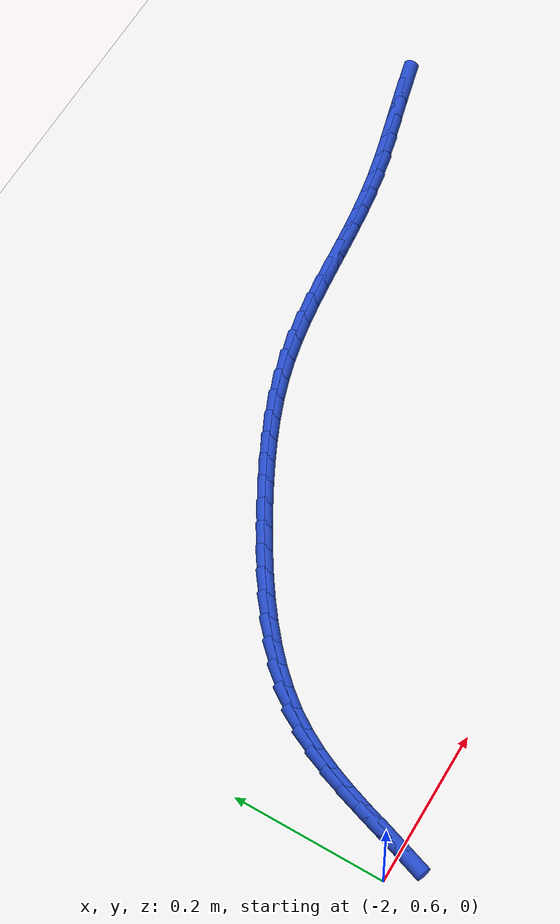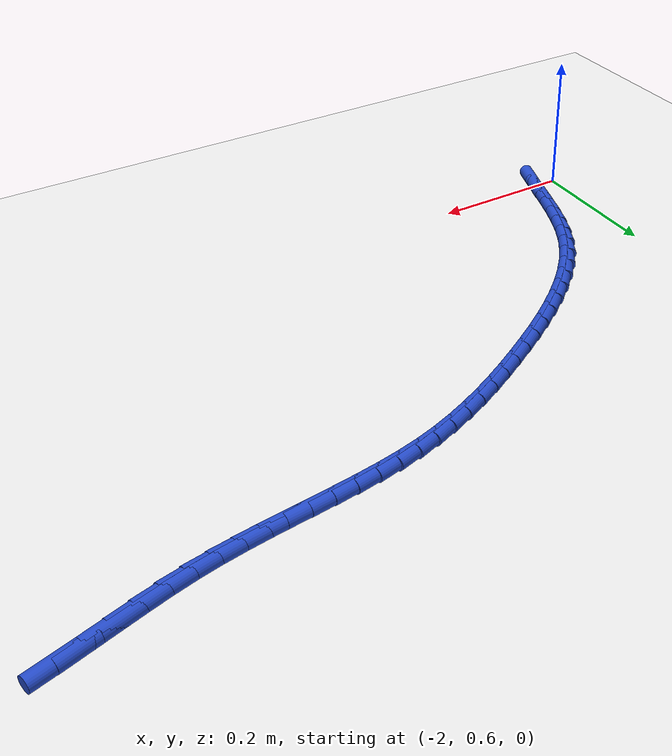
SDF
<sdf version="1.6">
 <world name="default">
  <model name="ground_plane">
   <static>1</static>
   <link name="link">
    <collision name="collision">
     <geometry><plane><normal>0 0 1</normal><size>100 100</size></plane></geometry>
     <surface><friction><ode><mu>100</mu><mu2>50</mu2></ode></friction></surface>
    </collision>
    <visual name="visual">
     <cast_shadows>0</cast_shadows>
     <geometry><plane><normal>0 0 1</normal><size>100 100</size></plane></geometry>
     <material>
      <script><uri>file://media/materials/scripts/gazebo.material</uri><name>Gazebo/WhiteGlow</name></script>
     </material>
    </visual>
   </link>
  </model>
  <model name="line">
   <link name="link_57">
    <pose>-1.0341355721632826 1.1165817142905419 0.01 0 1.57 0.2523711938627876</pose>
    <collision name="collision">
     <geometry><cylinder><radius>0.01</radius><length>0.08</length></cylinder></geometry>
    </collision>
    <visual name="visual">
     <material>
      <script><name>Gazebo/Blue</name><uri>file://media/materials/scripts/gazebo.material</uri></script>
     </material>
     <geometry><cylinder><radius>0.01</radius><length>0.08</length></cylinder></geometry>
    </visual>
   </link>
   <link name="link_58">
    <pose>-1.0632259845158893 1.1090801914552888 0.01 0 1.57 0.2639549422499165</pose>
    <collision name="collision">
     <geometry><cylinder><radius>0.01</radius><length>0.08</length></cylinder></geometry>
    </collision>
    <visual name="visual">
     <material>
      <script><name>Gazebo/Blue</name><uri>file://media/materials/scripts/gazebo.material</uri></script>
     </material>
     <geometry><cylinder><radius>0.01</radius><length>0.08</length></cylinder></geometry>
    </visual>
   </link>
   <link name="link_59">
    <pose>-1.0923888204367642 1.1011986187046174 0.01 0 1.57 0.26235235323605666</pose>
    <collision name="collision">
     <geometry><cylinder><radius>0.01</radius><length>0.08</length></cylinder></geometry>
    </collision>
    <visual name="visual">
     <material>
      <script><name>Gazebo/Blue</name><uri>file://media/materials/scripts/gazebo.material</uri></script>
     </material>
     <geometry><cylinder><radius>0.01</radius><length>0.08</length></cylinder></geometry>
    </visual>
   </link>
   <link name="link_60">
    <pose>-1.1216467768339575 1.0933416301317795 0.01 0 1.57 0.24766260051235447</pose>
    <collision name="collision">
     <geometry><cylinder><radius>0.01</radius><length>0.08</length></cylinder></geometry>
    </collision>
    <visual name="visual">
     <material>
      <script><name>Gazebo/Blue</name><uri>file://media/materials/scripts/gazebo.material</uri></script>
     </material>
     <geometry><cylinder><radius>0.01</radius><length>0.08</length></cylinder></geometry>
    </visual>
   </link>
   <link name="link_61">
    <pose>-1.1510225506155207 1.0859138598300249 0.01 0 1.57 0.21979034669728906</pose>
    <collision name="collision">
     <geometry><cylinder><radius>0.01</radius><length>0.08</length></cylinder></geometry>
    </collision>
    <visual name="visual">
     <material>
      <script><name>Gazebo/Blue</name><uri>file://media/materials/scripts/gazebo.material</uri></script>
     </material>
     <geometry><cylinder><radius>0.01</radius><length>0.08</length></cylinder></geometry>
    </visual>
   </link>
   <link name="link_62">
    <pose>-1.1805388386895042 1.0793199418926047 0.01 0 1.57 0.1802586437197359</pose>
    <collision name="collision">
     <geometry><cylinder><radius>0.01</radius><length>0.08</length></cylinder></geometry>
    </collision>
    <visual name="visual">
     <material>
      <script><name>Gazebo/Blue</name><uri>file://media/materials/scripts/gazebo.material</uri></script>
     </material>
     <geometry><cylinder><radius>0.01</radius><length>0.08</length></cylinder></geometry>
    </visual>
   </link>
   <link name="link_63">
    <pose>-1.2102122684973604 1.073912352489335 0.01 0 1.57 0.1434360916557586</pose>
    <collision name="collision">
     <geometry><cylinder><radius>0.01</radius><length>0.08</length></cylinder></geometry>
    </collision>
    <visual name="visual">
     <material>
      <script><name>Gazebo/Blue</name><uri>file://media/materials/scripts/gazebo.material</uri></script>
     </material>
     <geometry><cylinder><radius>0.01</radius><length>0.08</length></cylinder></geometry>
    </visual>
   </link>
   <link name="link_64">
    <pose>-1.2400088851289501 1.0696088886665351 0.01 0 1.57 0.11659366766979566</pose>
    <collision name="collision">
     <geometry><cylinder><radius>0.01</radius><length>0.08</length></cylinder></geometry>
    </collision>
    <visual name="visual">
     <material>
      <script><name>Gazebo/Blue</name><uri>file://media/materials/scripts/gazebo.material</uri></script>
     </material>
     <geometry><cylinder><radius>0.01</radius><length>0.08</length></cylinder></geometry>
    </visual>
   </link>
   <link name="link_65">
    <pose>-1.2698696108476741 1.0661114546177148 0.01 0 1.57 0.09981794766095574</pose>
    <collision name="collision">
     <geometry><cylinder><radius>0.01</radius><length>0.08</length></cylinder></geometry>
    </collision>
    <visual name="visual">
     <material>
      <script><name>Gazebo/Blue</name><uri>file://media/materials/scripts/gazebo.material</uri></script>
     </material>
     <geometry><cylinder><radius>0.01</radius><length>0.08</length></cylinder></geometry>
    </visual>
   </link>
   <link name="link_66">
    <pose>-1.2997351862791553 1.0631203936332825 0.01 0 1.57 0.09312921225657378</pose>
    <collision name="collision">
     <geometry><cylinder><radius>0.01</radius><length>0.08</length></cylinder></geometry>
    </collision>
    <visual name="visual">
     <material>
      <script><name>Gazebo/Blue</name><uri>file://media/materials/scripts/gazebo.material</uri></script>
     </material>
     <geometry><cylinder><radius>0.01</radius><length>0.08</length></cylinder></geometry>
    </visual>
   </link>
   <link name="link_67">
    <pose>-1.3295463520490158 1.0603360490036464 0.01 0 1.57 0.0965849872808206</pose>
    <collision name="collision">
     <geometry><cylinder><radius>0.01</radius><length>0.08</length></cylinder></geometry>
    </collision>
    <visual name="visual">
     <material>
      <script><name>Gazebo/Blue</name><uri>file://media/materials/scripts/gazebo.material</uri></script>
     </material>
     <geometry><cylinder><radius>0.01</radius><length>0.08</length></cylinder></geometry>
    </visual>
   </link>
   <link name="link_68">
    <pose>-1.3592438487828804 1.0574587640192152 0.01 0 1.57 0.11030170786237654</pose>
    <collision name="collision">
     <geometry><cylinder><radius>0.01</radius><length>0.08</length></cylinder></geometry>
    </collision>
    <visual name="visual">
     <material>
      <script><name>Gazebo/Blue</name><uri>file://media/materials/scripts/gazebo.material</uri></script>
     </material>
     <geometry><cylinder><radius>0.01</radius><length>0.08</length></cylinder></geometry>
    </visual>
   </link>
   <link name="link_69">
    <pose>-1.388768417106371 1.054188881970397 0.01 0 1.57 0.13444568912209892</pose>
    <collision name="collision">
     <geometry><cylinder><radius>0.01</radius><length>0.08</length></cylinder></geometry>
    </collision>
    <visual name="visual">
     <material>
      <script><name>Gazebo/Blue</name><uri>file://media/materials/scripts/gazebo.material</uri></script>
     </material>
     <geometry><cylinder><radius>0.01</radius><length>0.08</length></cylinder></geometry>
    </visual>
   </link>
   <link name="link_70">
    <pose>-1.4180607976451114 1.0502267461476 0.01 0 1.57 0.16919059710588277</pose>
    <collision name="collision">
     <geometry><cylinder><radius>0.01</radius><length>0.08</length></cylinder></geometry>
    </collision>
    <visual name="visual">
     <material>
      <script><name>Gazebo/Blue</name><uri>file://media/materials/scripts/gazebo.material</uri></script>
     </material>
     <geometry><cylinder><radius>0.01</radius><length>0.08</length></cylinder></geometry>
    </visual>
   </link>
   <link name="link_71">
    <pose>-1.4470617310247236 1.0452726998412325 0.01 0 1.57 0.21463730751748797</pose>
    <collision name="collision">
     <geometry><cylinder><radius>0.01</radius><length>0.08</length></cylinder></geometry>
    </collision>
    <visual name="visual">
     <material>
      <script><name>Gazebo/Blue</name><uri>file://media/materials/scripts/gazebo.material</uri></script>
     </material>
     <geometry><cylinder><radius>0.01</radius><length>0.08</length></cylinder></geometry>
    </visual>
   </link>
   <link name="link_72">
    <pose>-1.475711957870832 1.039027086341703 0.01 0 1.57 0.26925357434867975</pose>
    <collision name="collision">
     <geometry><cylinder><radius>0.01</radius><length>0.08</length></cylinder></geometry>
    </collision>
    <visual name="visual">
     <material>
      <script><name>Gazebo/Blue</name><uri>file://media/materials/scripts/gazebo.material</uri></script>
     </material>
     <geometry><cylinder><radius>0.01</radius><length>0.08</length></cylinder></geometry>
    </visual>
   </link>
   <link name="link_73">
    <pose>-1.5039619061201195 1.031231380247969 0.01 0 1.57 0.3227412887654099</pose>
    <collision name="collision">
     <geometry><cylinder><radius>0.01</radius><length>0.08</length></cylinder></geometry>
    </collision>
    <visual name="visual">
     <material>
      <script><name>Gazebo/Blue</name><uri>file://media/materials/scripts/gazebo.material</uri></script>
     </material>
     <geometry><cylinder><radius>0.01</radius><length>0.08</length></cylinder></geometry>
    </visual>
   </link>
   <link name="link_74">
    <pose>-1.531829032066127 1.021911651544648 0.01 0 1.57 0.3706131150262161</pose>
    <collision name="collision">
     <geometry><cylinder><radius>0.01</radius><length>0.08</length></cylinder></geometry>
    </collision>
    <visual name="visual">
     <material>
      <script><name>Gazebo/Blue</name><uri>file://media/materials/scripts/gazebo.material</uri></script>
     </material>
     <geometry><cylinder><radius>0.01</radius><length>0.08</length></cylinder></geometry>
    </visual>
   </link>
   <link name="link_75">
    <pose>-1.559359135898465 1.0112143154316038 0.01 0 1.57 0.41275070390098384</pose>
    <collision name="collision">
     <geometry><cylinder><radius>0.01</radius><length>0.08</length></cylinder></geometry>
    </collision>
    <visual name="visual">
     <material>
      <script><name>Gazebo/Blue</name><uri>file://media/materials/scripts/gazebo.material</uri></script>
     </material>
     <geometry><cylinder><radius>0.01</radius><length>0.08</length></cylinder></geometry>
    </visual>
   </link>
   <link name="link_76">
    <pose>-1.586598118890442 0.9992862162994985 0.01 0 1.57 0.44917497037177456</pose>
    <collision name="collision">
     <geometry><cylinder><radius>0.01</radius><length>0.08</length></cylinder></geometry>
    </collision>
    <visual name="visual">
     <material>
      <script><name>Gazebo/Blue</name><uri>file://media/materials/scripts/gazebo.material</uri></script>
     </material>
     <geometry><cylinder><radius>0.01</radius><length>0.08</length></cylinder></geometry>
    </visual>
   </link>
   <link name="link_77">
    <pose>-1.6135918823153685 0.9862741985389955 0.01 0 1.57 0.47998864530366286</pose>
    <collision name="collision">
     <geometry><cylinder><radius>0.01</radius><length>0.08</length></cylinder></geometry>
    </collision>
    <visual name="visual">
     <material>
      <script><name>Gazebo/Blue</name><uri>file://media/materials/scripts/gazebo.material</uri></script>
     </material>
     <geometry><cylinder><radius>0.01</radius><length>0.08</length></cylinder></geometry>
    </visual>
   </link>
   <link name="link_78">
    <pose>-1.6403863274465524 0.9723251065407577 0.01 0 1.57 0.5053399608181988</pose>
    <collision name="collision">
     <geometry><cylinder><radius>0.01</radius><length>0.08</length></cylinder></geometry>
    </collision>
    <visual name="visual">
     <material>
      <script><name>Gazebo/Blue</name><uri>file://media/materials/scripts/gazebo.material</uri></script>
     </material>
     <geometry><cylinder><radius>0.01</radius><length>0.08</length></cylinder></geometry>
    </visual>
   </link>
   <link name="link_79">
    <pose>-1.6670273555573034 0.9575857846954472 0.01 0 1.57 0.5256539473574007</pose>
    <collision name="collision">
     <geometry><cylinder><radius>0.01</radius><length>0.08</length></cylinder></geometry>
    </collision>
    <visual name="visual">
     <material>
      <script><name>Gazebo/Blue</name><uri>file://media/materials/scripts/gazebo.material</uri></script>
     </material>
     <geometry><cylinder><radius>0.01</radius><length>0.08</length></cylinder></geometry>
    </visual>
   </link>
   <link name="link_80">
    <pose>-1.6935543247513467 0.9421976554642718 0.01 0 1.57 0.5465671855680987</pose>
    <collision name="collision">
     <geometry><cylinder><radius>0.01</radius><length>0.08</length></cylinder></geometry>
    </collision>
    <visual name="visual">
     <material>
      <script><name>Gazebo/Blue</name><uri>file://media/materials/scripts/gazebo.material</uri></script>
     </material>
     <geometry><cylinder><radius>0.01</radius><length>0.08</length></cylinder></geometry>
    </visual>
   </link>
   <link name="link_81">
    <pose>-1.7198689260144753 0.9261880648822917 0.01 0 1.57 0.5735089733574718</pose>
    <collision name="collision">
     <geometry><cylinder><radius>0.01</radius><length>0.08</length></cylinder></geometry>
    </collision>
    <visual name="visual">
     <material>
      <script><name>Gazebo/Blue</name><uri>file://media/materials/scripts/gazebo.material</uri></script>
     </material>
     <geometry><cylinder><radius>0.01</radius><length>0.08</length></cylinder></geometry>
    </visual>
   </link>
   <link name="link_82">
    <pose>-1.7457419527585794 0.9094758920707108 0.01 0 1.57 0.6070470613428062</pose>
    <collision name="collision">
     <geometry><cylinder><radius>0.01</radius><length>0.08</length></cylinder></geometry>
    </collision>
    <visual name="visual">
     <material>
      <script><name>Gazebo/Blue</name><uri>file://media/materials/scripts/gazebo.material</uri></script>
     </material>
     <geometry><cylinder><radius>0.01</radius><length>0.08</length></cylinder></geometry>
    </visual>
   </link>
   <link name="link_83">
    <pose>-1.7709390102139784 0.8919757170180045 0.01 0 1.57 0.6476668374511186</pose>
    <collision name="collision">
     <geometry><cylinder><radius>0.01</radius><length>0.08</length></cylinder></geometry>
    </collision>
    <visual name="visual">
     <material>
      <script><name>Gazebo/Blue</name><uri>file://media/materials/scripts/gazebo.material</uri></script>
     </material>
     <geometry><cylinder><radius>0.01</radius><length>0.08</length></cylinder></geometry>
    </visual>
   </link>
   <link name="link_84">
    <pose>-1.7952257036109867 0.8736021197126481 0.01 0 1.57 0.6959482453241205</pose>
    <collision name="collision">
     <geometry><cylinder><radius>0.01</radius><length>0.08</length></cylinder></geometry>
    </collision>
    <visual name="visual">
     <material>
      <script><name>Gazebo/Blue</name><uri>file://media/materials/scripts/gazebo.material</uri></script>
     </material>
     <geometry><cylinder><radius>0.01</radius><length>0.08</length></cylinder></geometry>
    </visual>
   </link>
   <link name="link_85">
    <pose>-1.8183676381799223 0.8542696801431164 0.01 0 1.57 0.7525173713434911</pose>
    <collision name="collision">
     <geometry><cylinder><radius>0.01</radius><length>0.08</length></cylinder></geometry>
    </collision>
    <visual name="visual">
     <material>
      <script><name>Gazebo/Blue</name><uri>file://media/materials/scripts/gazebo.material</uri></script>
     </material>
     <geometry><cylinder><radius>0.01</radius><length>0.08</length></cylinder></geometry>
    </visual>
   </link>
   <link name="link_86">
    <pose>-1.8401304191511005 0.8338929782978852 0.01 0 1.57 0.8179669199475246</pose>
    <collision name="collision">
     <geometry><cylinder><radius>0.01</radius><length>0.08</length></cylinder></geometry>
    </collision>
    <visual name="visual">
     <material>
      <script><name>Gazebo/Blue</name><uri>file://media/materials/scripts/gazebo.material</uri></script>
     </material>
     <geometry><cylinder><radius>0.01</radius><length>0.08</length></cylinder></geometry>
    </visual>
   </link>
   <link name="link_87">
    <pose>-1.8602796517548397 0.8123865941654298 0.01 0 1.57 0.8927338775663424</pose>
    <collision name="collision">
     <geometry><cylinder><radius>0.01</radius><length>0.08</length></cylinder></geometry>
    </collision>
    <visual name="visual">
     <material>
      <script><name>Gazebo/Blue</name><uri>file://media/materials/scripts/gazebo.material</uri></script>
     </material>
     <geometry><cylinder><radius>0.01</radius><length>0.08</length></cylinder></geometry>
    </visual>
   </link>
   <link name="link_88">
    <pose>-1.8785809412214556 0.7896651077342248 0.01 0 1.57 0.9769295401908574</pose>
    <collision name="collision">
     <geometry><cylinder><radius>0.01</radius><length>0.08</length></cylinder></geometry>
    </collision>
    <visual name="visual">
     <material>
      <script><name>Gazebo/Blue</name><uri>file://media/materials/scripts/gazebo.material</uri></script>
     </material>
     <geometry><cylinder><radius>0.01</radius><length>0.08</length></cylinder></geometry>
    </visual>
   </link>
   <link name="link_89">
    <pose>-1.8947998927813205 0.7656430989927725 0.01 0 1.57 1.0657709058590366</pose>
    <collision name="collision">
     <geometry><cylinder><radius>0.01</radius><length>0.08</length></cylinder></geometry>
    </collision>
    <visual name="visual">
     <material>
      <script><name>Gazebo/Blue</name><uri>file://media/materials/scripts/gazebo.material</uri></script>
     </material>
     <geometry><cylinder><radius>0.01</radius><length>0.08</length></cylinder></geometry>
    </visual>
   </link>
   <link name="link_90">
    <pose>-1.908816980969222 0.7402886701592212 0.01 0 1.57 1.140850544865656</pose>
    <collision name="collision">
     <geometry><cylinder><radius>0.01</radius><length>0.08</length></cylinder></geometry>
    </collision>
    <visual name="visual">
     <material>
      <script><name>Gazebo/Blue</name><uri>file://media/materials/scripts/gazebo.material</uri></script>
     </material>
     <geometry><cylinder><radius>0.01</radius><length>0.08</length></cylinder></geometry>
    </visual>
   </link>
   <link name="link_91">
    <pose>-1.9209710678334133 0.713783504633299 0.01 0 1.57 1.1973553065449696</pose>
    <collision name="collision">
     <geometry><cylinder><radius>0.01</radius><length>0.08</length></cylinder></geometry>
    </collision>
    <visual name="visual">
     <material>
      <script><name>Gazebo/Blue</name><uri>file://media/materials/scripts/gazebo.material</uri></script>
     </material>
     <geometry><cylinder><radius>0.01</radius><length>0.08</length></cylinder></geometry>
    </visual>
   </link>
   <link name="link_92">
    <pose>-1.9317153405202538 0.6863625544767692 0.01 0 1.57 1.2356433002505762</pose>
    <collision name="collision">
     <geometry><cylinder><radius>0.01</radius><length>0.08</length></cylinder></geometry>
    </collision>
    <visual name="visual">
     <material>
      <script><name>Gazebo/Blue</name><uri>file://media/materials/scripts/gazebo.material</uri></script>
     </material>
     <geometry><cylinder><radius>0.01</radius><length>0.08</length></cylinder></geometry>
    </visual>
   </link>
   <link name="link_93">
    <pose>-1.941502986176101 0.6582607717513962 0.01 0 1.57 1.2563675256146398</pose>
    <collision name="collision">
     <geometry><cylinder><radius>0.01</radius><length>0.08</length></cylinder></geometry>
    </collision>
    <visual name="visual">
     <material>
      <script><name>Gazebo/Blue</name><uri>file://media/materials/scripts/gazebo.material</uri></script>
     </material>
     <geometry><cylinder><radius>0.01</radius><length>0.08</length></cylinder></geometry>
    </visual>
   </link>
   <link name="link_94">
    <pose>-1.9507871919473145 0.6297131085189435 0.01 0 1.57 1.2601094565224904</pose>
    <collision name="collision">
     <geometry><cylinder><radius>0.01</radius><length>0.08</length></cylinder></geometry>
    </collision>
    <visual name="visual">
     <material>
      <script><name>Gazebo/Blue</name><uri>file://media/materials/scripts/gazebo.material</uri></script>
     </material>
     <geometry><cylinder><radius>0.01</radius><length>0.08</length></cylinder></geometry>
    </visual>
   </link>
   <link name="link_95">
    <pose>-1.9600211449802516 0.600954516841176 0.01 0 1.57 1.2472084082857162</pose>
    <collision name="collision">
     <geometry><cylinder><radius>0.01</radius><length>0.08</length></cylinder></geometry>
    </collision>
    <visual name="visual">
     <material>
      <script><name>Gazebo/Blue</name><uri>file://media/materials/scripts/gazebo.material</uri></script>
     </material>
     <geometry><cylinder><radius>0.01</radius><length>0.08</length></cylinder></geometry>
    </visual>
   </link>
  </model>
 </world>
</sdf>
